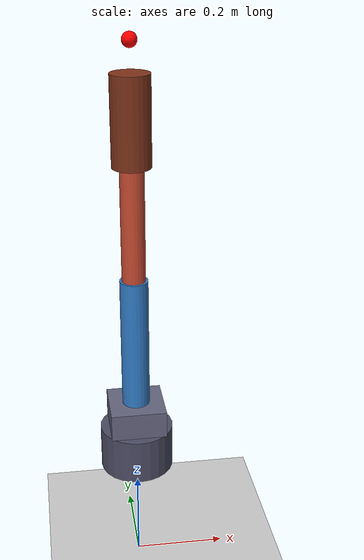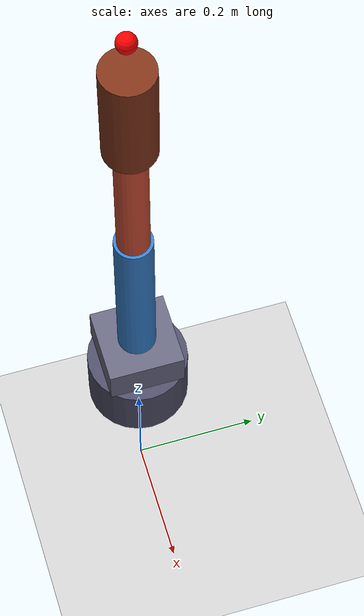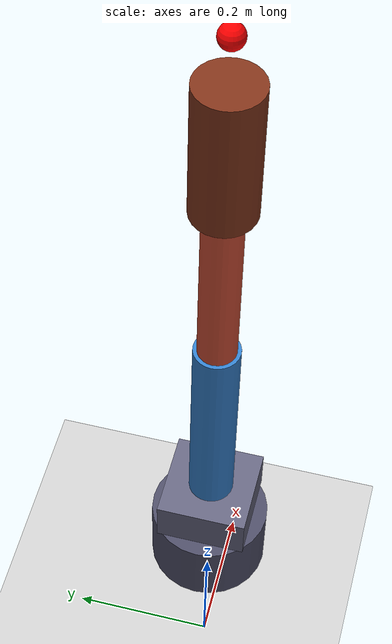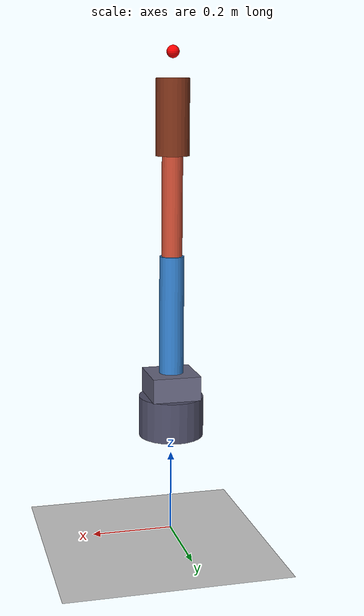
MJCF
<mujoco model="so101_arm">
  <compiler angle="degree"/>

  <option gravity="0 0 -9.81" timestep="0.002"/>

  <worldbody>
    <light pos="2 2 3" dir="-1 -1 -1" diffuse="0.8 0.8 0.8"/>

    <!-- 地面 -->
    <geom name="floor" type="plane" size="2 2 0.01" rgba="0.8 0.8 0.8 1"/>

    <!-- 底座 -->
    <body name="base" pos="0 0 0.3">
      <geom name="base_cylinder" type="cylinder" size="0.08 0.05" rgba="0.3 0.3 0.4 1"/>
      <geom name="base_top"     type="box" size="0.06 0.06 0.03" pos="0 0 0.08" rgba="0.4 0.4 0.5 1"/>

      <!-- Joint 0: 底座旋转（yaw，绕 Z 轴） -->
      <joint name="base_rotation" type="hinge" axis="0 0 1" range="-90 90"/>
      <geom name="base_ring" type="cylinder" size="0.04 0.02" pos="0 0 0.06" rgba="0.5 0.5 0.6 1"/>

      <!-- 上臂 -->
      <body name="upper_arm" pos="0 0 0.1">
        <!-- Joint 1: 肩关节俯仰（pitch，绕 Y 轴） -->
        <joint name="shoulder_pitch" type="hinge" axis="0 1 0" range="-90 45"/>
        <geom name="upper_arm_geom" type="cylinder" size="0.03 0.15" fromto="0 0 0 0 0 0.3"
              rgba="0.2 0.5 0.8 1"/>

        <!-- 前臂 -->
        <body name="forearm" pos="0 0 0.3">
          <!-- Joint 2: 肘关节俯仰（pitch，绕 Y 轴） -->
          <joint name="elbow_pitch" type="hinge" axis="0 1 0" range="-90 90"/>
          <geom name="forearm_geom" type="cylinder" size="0.025 0.12" fromto="0 0 0 0 0 0.24"
                rgba="0.8 0.3 0.2 1"/>

           <!-- 手腕 -->
          <body name="wrist_roll" pos="0 0 0.24">
            <!-- Joint 3: 腕关节俯仰（pitch，绕 Y 轴） -->
            <joint name="wrist_roll_pitch" type="hinge" axis="0 1 0" range="0 135"/>
            <geom name="wrist_roll_geom" type="cylinder" size="0.04 0.1" fromto="0 0 0 0 0 0.18"
                  rgba="0.5 0.2 0.1 1"/>

            <!-- 末端执行器标记点（测量 FK 用） -->
            <site name="end_effector" pos="0 0 0.24" size="0.015" rgba="1 0 0 1"/>
          </body>
        </body>
      </body>
    </body>
  </worldbody>

  <!-- 三个 position actuator。
       kp=40 提供适中的跟随刚度，kv=3 提供阻尼。
       注意：低增益下会有稳态误差，这是真实物理系统的特性。 -->
  <actuator>
    <position name="act_base"     joint="base_rotation"  kp="20" kv="2" ctrlrange="-1.57 1.57"/>
    <position name="act_shoulder" joint="shoulder_pitch" kp="20" kv="2" ctrlrange="-1.57 0.79"/>
    <position name="act_elbow"    joint="elbow_pitch"    kp="20" kv="2" ctrlrange="-1.57 1.57"/>
    <position name="wrist_roll"   joint="wrist_roll_pitch" kp="5"  kv="1" ctrlrange="0 2.36"/>
  </actuator>
</mujoco>
